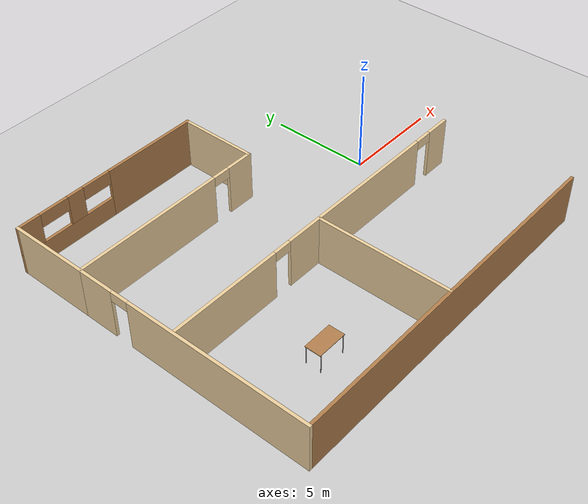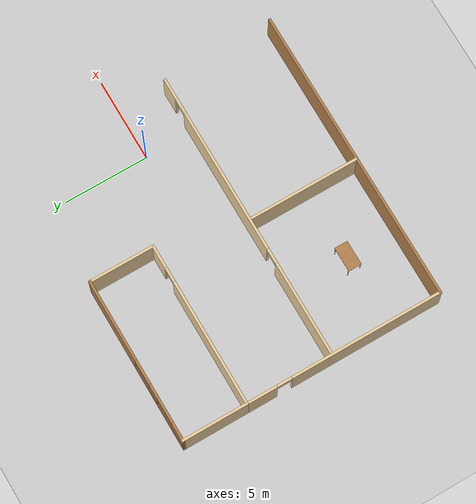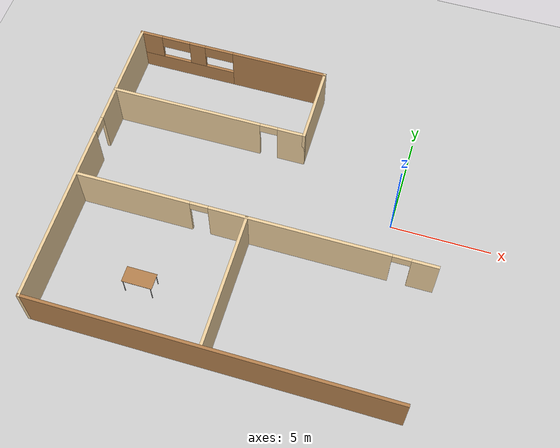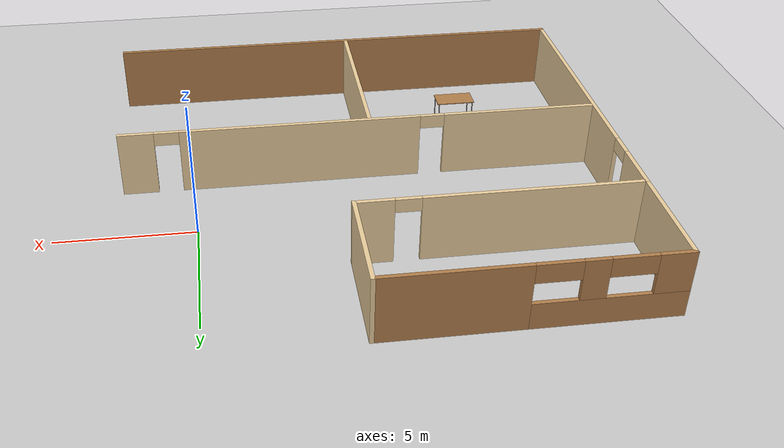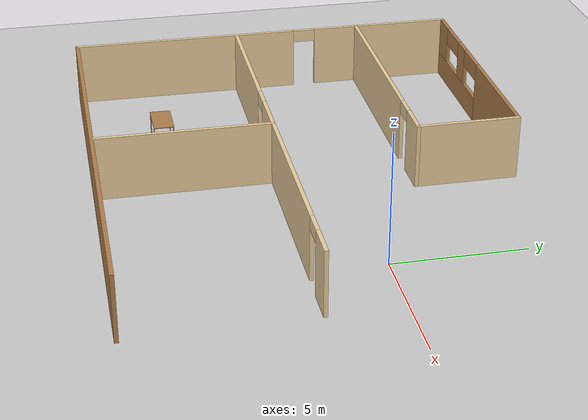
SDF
<sdf version="1.6">
 <world name="default">
  <model name="ground_plane">
   <static>1</static>
   <link name="link">
    <collision name="collision">
     <geometry><plane><normal>0 0 1</normal><size>100 100</size></plane></geometry>
     <surface><friction><ode><mu>100</mu><mu2>50</mu2></ode></friction></surface>
    </collision>
    <visual name="visual">
     <cast_shadows>0</cast_shadows>
     <geometry><plane><normal>0 0 1</normal><size>100 100</size></plane></geometry>
     <material>
      <script><uri>file://media/materials/scripts/gazebo.material</uri><name>Gazebo/Grey</name></script>
     </material>
    </visual>
   </link>
  </model>
  <model name="mymodel_2">
   <link name="Wall_125">
    <pose>1.575 7.85 0 0 -0 3.14159</pose>
    <visual name="Wall_125_Visual_0">
     <pose>-2.52053 0 1.25 0 -0 0</pose>
     <geometry><box><size>4.95895 0.15 2.5</size></box></geometry>
     <material>
      <script><uri>file://media/materials/scripts/gazebo.material</uri><name>Gazebo/Wood</name></script>
      <ambient>0.996078 0.47451 0.0196078 1</ambient>
      <shader type="pixel"/>
      <diffuse>1 1 1 1</diffuse>
      <specular>0.2 0.2 0.2 1</specular>
      <emissive>0 0 0 1</emissive>
     </material>
    </visual>
    <visual name="Wall_125_Visual_1">
     <pose>2.47947 0 0.5 0 -0 0</pose>
     <geometry><box><size>5.04105 0.15 1</size></box></geometry>
     <material>
      <script><uri>file://media/materials/scripts/gazebo.material</uri><name>Gazebo/Wood</name></script>
      <ambient>0.996078 0.47451 0.0196078 1</ambient>
      <shader type="pixel"/>
      <diffuse>1 1 1 1</diffuse>
      <specular>0.2 0.2 0.2 1</specular>
      <emissive>0 0 0 1</emissive>
     </material>
    </visual>
    <visual name="Wall_125_Visual_2">
     <pose>1.88216 0 1.75 0 -0 0</pose>
     <geometry><box><size>0.846424 0.15 1.5</size></box></geometry>
     <material>
      <script><uri>file://media/materials/scripts/gazebo.material</uri><name>Gazebo/Wood</name></script>
      <ambient>0.996078 0.47451 0.0196078 1</ambient>
      <shader type="pixel"/>
      <diffuse>1 1 1 1</diffuse>
      <specular>0.2 0.2 0.2 1</specular>
      <emissive>0 0 0 1</emissive>
     </material>
    </visual>
    <visual name="Wall_125_Visual_3">
     <pose>4.40268 0 1.75 0 -0 0</pose>
     <geometry><box><size>1.19463 0.15 1.5</size></box></geometry>
     <material>
      <script><uri>file://media/materials/scripts/gazebo.material</uri><name>Gazebo/Wood</name></script>
      <ambient>0.996078 0.47451 0.0196078 1</ambient>
      <shader type="pixel"/>
      <diffuse>1 1 1 1</diffuse>
      <specular>0.2 0.2 0.2 1</specular>
      <emissive>0 0 0 1</emissive>
     </material>
    </visual>
    <visual name="Wall_125_Visual_4">
     <pose>0.708946 0 2.15 0 -0 0</pose>
     <geometry><box><size>1.5 0.15 0.7</size></box></geometry>
     <material>
      <script><uri>file://media/materials/scripts/gazebo.material</uri><name>Gazebo/Wood</name></script>
      <ambient>0.996078 0.47451 0.0196078 1</ambient>
      <shader type="pixel"/>
      <diffuse>1 1 1 1</diffuse>
      <specular>0.2 0.2 0.2 1</specular>
      <emissive>0 0 0 1</emissive>
     </material>
    </visual>
    <visual name="Wall_125_Visual_5">
     <pose>3.05537 0 2.15 0 -0 0</pose>
     <geometry><box><size>1.5 0.15 0.7</size></box></geometry>
     <material>
      <script><uri>file://media/materials/scripts/gazebo.material</uri><name>Gazebo/Wood</name></script>
      <ambient>0.996078 0.47451 0.0196078 1</ambient>
      <shader type="pixel"/>
      <diffuse>1 1 1 1</diffuse>
      <specular>0.2 0.2 0.2 1</specular>
      <emissive>0 0 0 1</emissive>
     </material>
    </visual>
    <collision name="Wall_125_Collision_0">
     <pose>-2.52053 0 1.25 0 -0 0</pose>
     <geometry><box><size>4.95895 0.15 2.5</size></box></geometry>
     <surface>
      <friction>
       <ode><mu>1</mu><mu2>1</mu2><fdir1>0 0 0</fdir1><slip1>0</slip1><slip2>0</slip2></ode>
       <torsional>
        <coefficient>1</coefficient>
        <patch_radius>0</patch_radius>
        <surface_radius>0</surface_radius>
        <use_patch_radius>1</use_patch_radius>
        <ode><slip>0</slip></ode>
       </torsional>
      </friction>
      <bounce><restitution_coefficient>0</restitution_coefficient><threshold>1e+06</threshold></bounce>
      <contact>
       <collide_without_contact>0</collide_without_contact>
       <collide_without_contact_bitmask>1</collide_without_contact_bitmask>
       <collide_bitmask>1</collide_bitmask>
       <ode>
        <soft_cfm>0</soft_cfm>
        <soft_erp>0.2</soft_erp>
        <kp>1e+13</kp>
        <kd>1</kd>
        <max_vel>0.01</max_vel>
        <min_depth>0</min_depth>
       </ode>
       <bullet>
        <split_impulse>1</split_impulse>
        <split_impulse_penetration_threshold>-0.01</split_impulse_penetration_threshold>
        <soft_cfm>0</soft_cfm>
        <soft_erp>0.2</soft_erp>
        <kp>1e+13</kp>
        <kd>1</kd>
       </bullet>
      </contact>
     </surface>
    </collision>
    <collision name="Wall_125_Collision_1">
     <pose>2.47947 0 0.5 0 -0 0</pose>
     <geometry><box><size>5.04105 0.15 1</size></box></geometry>
     <surface>
      <friction>
       <ode><mu>1</mu><mu2>1</mu2><fdir1>0 0 0</fdir1><slip1>0</slip1><slip2>0</slip2></ode>
       <torsional>
        <coefficient>1</coefficient>
        <patch_radius>0</patch_radius>
        <surface_radius>0</surface_radius>
        <use_patch_radius>1</use_patch_radius>
        <ode><slip>0</slip></ode>
       </torsional>
      </friction>
      <bounce><restitution_coefficient>0</restitution_coefficient><threshold>1e+06</threshold></bounce>
      <contact>
       <collide_without_contact>0</collide_without_contact>
       <collide_without_contact_bitmask>1</collide_without_contact_bitmask>
       <collide_bitmask>1</collide_bitmask>
       <ode>
        <soft_cfm>0</soft_cfm>
        <soft_erp>0.2</soft_erp>
        <kp>1e+13</kp>
        <kd>1</kd>
        <max_vel>0.01</max_vel>
        <min_depth>0</min_depth>
       </ode>
       <bullet>
        <split_impulse>1</split_impulse>
        <split_impulse_penetration_threshold>-0.01</split_impulse_penetration_threshold>
        <soft_cfm>0</soft_cfm>
        <soft_erp>0.2</soft_erp>
        <kp>1e+13</kp>
        <kd>1</kd>
       </bullet>
      </contact>
     </surface>
    </collision>
    <collision name="Wall_125_Collision_3">
     <pose>4.40268 0 1.75 0 -0 0</pose>
     <geometry><box><size>1.19463 0.15 1.5</size></box></geometry>
     <surface>
      <friction>
       <ode><mu>1</mu><mu2>1</mu2><fdir1>0 0 0</fdir1><slip1>0</slip1><slip2>0</slip2></ode>
       <torsional>
        <coefficient>1</coefficient>
        <patch_radius>0</patch_radius>
        <surface_radius>0</surface_radius>
        <use_patch_radius>1</use_patch_radius>
        <ode><slip>0</slip></ode>
       </torsional>
      </friction>
      <bounce><restitution_coefficient>0</restitution_coefficient><threshold>1e+06</threshold></bounce>
      <contact>
       <collide_without_contact>0</collide_without_contact>
       <collide_without_contact_bitmask>1</collide_without_contact_bitmask>
       <collide_bitmask>1</collide_bitmask>
       <ode>
        <soft_cfm>0</soft_cfm>
        <soft_erp>0.2</soft_erp>
        <kp>1e+13</kp>
        <kd>1</kd>
        <max_vel>0.01</max_vel>
        <min_depth>0</min_depth>
       </ode>
       <bullet>
        <split_impulse>1</split_impulse>
        <split_impulse_penetration_threshold>-0.01</split_impulse_penetration_threshold>
        <soft_cfm>0</soft_cfm>
        <soft_erp>0.2</soft_erp>
        <kp>1e+13</kp>
        <kd>1</kd>
       </bullet>
      </contact>
     </surface>
    </collision>
    <collision name="Wall_125_Collision_2">
     <pose>1.88216 0 1.75 0 -0 0</pose>
     <geometry><box><size>0.846424 0.15 1.5</size></box></geometry>
     <surface>
      <friction>
       <ode><mu>1</mu><mu2>1</mu2><fdir1>0 0 0</fdir1><slip1>0</slip1><slip2>0</slip2></ode>
       <torsional>
        <coefficient>1</coefficient>
        <patch_radius>0</patch_radius>
        <surface_radius>0</surface_radius>
        <use_patch_radius>1</use_patch_radius>
        <ode><slip>0</slip></ode>
       </torsional>
      </friction>
      <bounce><restitution_coefficient>0</restitution_coefficient><threshold>1e+06</threshold></bounce>
      <contact>
       <collide_without_contact>0</collide_without_contact>
       <collide_without_contact_bitmask>1</collide_without_contact_bitmask>
       <collide_bitmask>1</collide_bitmask>
       <ode>
        <soft_cfm>0</soft_cfm>
        <soft_erp>0.2</soft_erp>
        <kp>1e+13</kp>
        <kd>1</kd>
        <max_vel>0.01</max_vel>
        <min_depth>0</min_depth>
       </ode>
       <bullet>
        <split_impulse>1</split_impulse>
        <split_impulse_penetration_threshold>-0.01</split_impulse_penetration_threshold>
        <soft_cfm>0</soft_cfm>
        <soft_erp>0.2</soft_erp>
        <kp>1e+13</kp>
        <kd>1</kd>
       </bullet>
      </contact>
     </surface>
    </collision>
    <collision name="Wall_125_Collision_4">
     <pose>0.708946 0 2.15 0 -0 0</pose>
     <geometry><box><size>1.5 0.15 0.7</size></box></geometry>
     <surface>
      <friction>
       <ode><mu>1</mu><mu2>1</mu2><fdir1>0 0 0</fdir1><slip1>0</slip1><slip2>0</slip2></ode>
       <torsional>
        <coefficient>1</coefficient>
        <patch_radius>0</patch_radius>
        <surface_radius>0</surface_radius>
        <use_patch_radius>1</use_patch_radius>
        <ode><slip>0</slip></ode>
       </torsional>
      </friction>
      <bounce><restitution_coefficient>0</restitution_coefficient><threshold>1e+06</threshold></bounce>
      <contact>
       <collide_without_contact>0</collide_without_contact>
       <collide_without_contact_bitmask>1</collide_without_contact_bitmask>
       <collide_bitmask>1</collide_bitmask>
       <ode>
        <soft_cfm>0</soft_cfm>
        <soft_erp>0.2</soft_erp>
        <kp>1e+13</kp>
        <kd>1</kd>
        <max_vel>0.01</max_vel>
        <min_depth>0</min_depth>
       </ode>
       <bullet>
        <split_impulse>1</split_impulse>
        <split_impulse_penetration_threshold>-0.01</split_impulse_penetration_threshold>
        <soft_cfm>0</soft_cfm>
        <soft_erp>0.2</soft_erp>
        <kp>1e+13</kp>
        <kd>1</kd>
       </bullet>
      </contact>
     </surface>
    </collision>
    <collision name="Wall_125_Collision_5">
     <pose>3.05537 0 2.15 0 -0 0</pose>
     <geometry><box><size>1.5 0.15 0.7</size></box></geometry>
     <surface>
      <friction>
       <ode><mu>1</mu><mu2>1</mu2><fdir1>0 0 0</fdir1><slip1>0</slip1><slip2>0</slip2></ode>
       <torsional>
        <coefficient>1</coefficient>
        <patch_radius>0</patch_radius>
        <surface_radius>0</surface_radius>
        <use_patch_radius>1</use_patch_radius>
        <ode><slip>0</slip></ode>
       </torsional>
      </friction>
      <bounce><restitution_coefficient>0</restitution_coefficient><threshold>1e+06</threshold></bounce>
      <contact>
       <collide_without_contact>0</collide_without_contact>
       <collide_without_contact_bitmask>1</collide_without_contact_bitmask>
       <collide_bitmask>1</collide_bitmask>
       <ode>
        <soft_cfm>0</soft_cfm>
        <soft_erp>0.2</soft_erp>
        <kp>1e+13</kp>
        <kd>1</kd>
        <max_vel>0.01</max_vel>
        <min_depth>0</min_depth>
       </ode>
       <bullet>
        <split_impulse>1</split_impulse>
        <split_impulse_penetration_threshold>-0.01</split_impulse_penetration_threshold>
        <soft_cfm>0</soft_cfm>
        <soft_erp>0.2</soft_erp>
        <kp>1e+13</kp>
        <kd>1</kd>
       </bullet>
      </contact>
     </surface>
    </collision>
   </link>
   <link name="Wall_127">
    <pose>-3.35 5.925 0 0 0 -1.5708</pose>
    <visual name="Wall_127_Visual">
     <pose>0 0 1.25 0 -0 0</pose>
     <geometry><box><size>4 0.15 2.5</size></box></geometry>
     <material>
      <script><uri>file://media/materials/scripts/gazebo.material</uri><name>Gazebo/Grey</name></script>
      <ambient>0.921569 0.807843 0.615686 1</ambient>
      <shader type="pixel"/>
      <diffuse>0.7 0.7 0.7 1</diffuse>
      <specular>0.01 0.01 0.01 1</specular>
      <emissive>0 0 0 1</emissive>
     </material>
    </visual>
    <collision name="Wall_127_Collision">
     <pose>0 0 1.25 0 -0 0</pose>
     <geometry><box><size>4 0.15 2.5</size></box></geometry>
     <surface>
      <friction>
       <ode><mu>1</mu><mu2>1</mu2><fdir1>0 0 0</fdir1><slip1>0</slip1><slip2>0</slip2></ode>
       <torsional>
        <coefficient>1</coefficient>
        <patch_radius>0</patch_radius>
        <surface_radius>0</surface_radius>
        <use_patch_radius>1</use_patch_radius>
        <ode><slip>0</slip></ode>
       </torsional>
      </friction>
      <bounce><restitution_coefficient>0</restitution_coefficient><threshold>1e+06</threshold></bounce>
      <contact>
       <collide_without_contact>0</collide_without_contact>
       <collide_without_contact_bitmask>1</collide_without_contact_bitmask>
       <collide_bitmask>1</collide_bitmask>
       <ode>
        <soft_cfm>0</soft_cfm>
        <soft_erp>0.2</soft_erp>
        <kp>1e+13</kp>
        <kd>1</kd>
        <max_vel>0.01</max_vel>
        <min_depth>0</min_depth>
       </ode>
       <bullet>
        <split_impulse>1</split_impulse>
        <split_impulse_penetration_threshold>-0.01</split_impulse_penetration_threshold>
        <soft_cfm>0</soft_cfm>
        <soft_erp>0.2</soft_erp>
        <kp>1e+13</kp>
        <kd>1</kd>
       </bullet>
      </contact>
     </surface>
    </collision>
   </link>
   <link name="Wall_129">
    <pose>1.575 4 0 0 -0 0</pose>
    <visual name="Wall_129_Visual_0">
     <pose>-1.15906 0 1.25 0 -0 0</pose>
     <geometry><box><size>7.68187 0.15 2.5</size></box></geometry>
     <material>
      <script><uri>file://media/materials/scripts/gazebo.material</uri><name>Gazebo/Grey</name></script>
      <ambient>0.921569 0.807843 0.615686 1</ambient>
      <shader type="pixel"/>
      <diffuse>0.7 0.7 0.7 1</diffuse>
      <specular>0.01 0.01 0.01 1</specular>
      <emissive>0 0 0 1</emissive>
     </material>
    </visual>
    <visual name="Wall_129_Visual_1">
     <pose>4.29094 0 1.25 0 -0 0</pose>
     <geometry><box><size>1.41813 0.15 2.5</size></box></geometry>
     <material>
      <script><uri>file://media/materials/scripts/gazebo.material</uri><name>Gazebo/Grey</name></script>
      <ambient>0.921569 0.807843 0.615686 1</ambient>
      <shader type="pixel"/>
      <diffuse>0.7 0.7 0.7 1</diffuse>
      <specular>0.01 0.01 0.01 1</specular>
      <emissive>0 0 0 1</emissive>
     </material>
    </visual>
    <visual name="Wall_129_Visual_2">
     <pose>3.13187 0 2.25 0 -0 0</pose>
     <geometry><box><size>0.9 0.15 0.5</size></box></geometry>
     <material>
      <script><uri>file://media/materials/scripts/gazebo.material</uri><name>Gazebo/Grey</name></script>
      <ambient>0.921569 0.807843 0.615686 1</ambient>
      <shader type="pixel"/>
      <diffuse>0.7 0.7 0.7 1</diffuse>
      <specular>0.01 0.01 0.01 1</specular>
      <emissive>0 0 0 1</emissive>
     </material>
    </visual>
    <collision name="Wall_129_Collision_0">
     <pose>-1.15906 0 1.25 0 -0 0</pose>
     <geometry><box><size>7.68187 0.15 2.5</size></box></geometry>
     <surface>
      <friction>
       <ode><mu>1</mu><mu2>1</mu2><fdir1>0 0 0</fdir1><slip1>0</slip1><slip2>0</slip2></ode>
       <torsional>
        <coefficient>1</coefficient>
        <patch_radius>0</patch_radius>
        <surface_radius>0</surface_radius>
        <use_patch_radius>1</use_patch_radius>
        <ode><slip>0</slip></ode>
       </torsional>
      </friction>
      <bounce><restitution_coefficient>0</restitution_coefficient><threshold>1e+06</threshold></bounce>
      <contact>
       <collide_without_contact>0</collide_without_contact>
       <collide_without_contact_bitmask>1</collide_without_contact_bitmask>
       <collide_bitmask>1</collide_bitmask>
       <ode>
        <soft_cfm>0</soft_cfm>
        <soft_erp>0.2</soft_erp>
        <kp>1e+13</kp>
        <kd>1</kd>
        <max_vel>0.01</max_vel>
        <min_depth>0</min_depth>
       </ode>
       <bullet>
        <split_impulse>1</split_impulse>
        <split_impulse_penetration_threshold>-0.01</split_impulse_penetration_threshold>
        <soft_cfm>0</soft_cfm>
        <soft_erp>0.2</soft_erp>
        <kp>1e+13</kp>
        <kd>1</kd>
       </bullet>
      </contact>
     </surface>
    </collision>
    <collision name="Wall_129_Collision_1">
     <pose>4.29094 0 1.25 0 -0 0</pose>
     <geometry><box><size>1.41813 0.15 2.5</size></box></geometry>
     <surface>
      <friction>
       <ode><mu>1</mu><mu2>1</mu2><fdir1>0 0 0</fdir1><slip1>0</slip1><slip2>0</slip2></ode>
       <torsional>
        <coefficient>1</coefficient>
        <patch_radius>0</patch_radius>
        <surface_radius>0</surface_radius>
        <use_patch_radius>1</use_patch_radius>
        <ode><slip>0</slip></ode>
       </torsional>
      </friction>
      <bounce><restitution_coefficient>0</restitution_coefficient><threshold>1e+06</threshold></bounce>
      <contact>
       <collide_without_contact>0</collide_without_contact>
       <collide_without_contact_bitmask>1</collide_without_contact_bitmask>
       <collide_bitmask>1</collide_bitmask>
       <ode>
        <soft_cfm>0</soft_cfm>
        <soft_erp>0.2</soft_erp>
        <kp>1e+13</kp>
        <kd>1</kd>
        <max_vel>0.01</max_vel>
        <min_depth>0</min_depth>
       </ode>
       <bullet>
        <split_impulse>1</split_impulse>
        <split_impulse_penetration_threshold>-0.01</split_impulse_penetration_threshold>
        <soft_cfm>0</soft_cfm>
        <soft_erp>0.2</soft_erp>
        <kp>1e+13</kp>
        <kd>1</kd>
       </bullet>
      </contact>
     </surface>
    </collision>
    <collision name="Wall_129_Collision_2">
     <pose>3.13187 0 2.25 0 -0 0</pose>
     <geometry><box><size>0.9 0.15 0.5</size></box></geometry>
     <surface>
      <friction>
       <ode><mu>1</mu><mu2>1</mu2><fdir1>0 0 0</fdir1><slip1>0</slip1><slip2>0</slip2></ode>
       <torsional>
        <coefficient>1</coefficient>
        <patch_radius>0</patch_radius>
        <surface_radius>0</surface_radius>
        <use_patch_radius>1</use_patch_radius>
        <ode><slip>0</slip></ode>
       </torsional>
      </friction>
      <bounce><restitution_coefficient>0</restitution_coefficient><threshold>1e+06</threshold></bounce>
      <contact>
       <collide_without_contact>0</collide_without_contact>
       <collide_without_contact_bitmask>1</collide_without_contact_bitmask>
       <collide_bitmask>1</collide_bitmask>
       <ode>
        <soft_cfm>0</soft_cfm>
        <soft_erp>0.2</soft_erp>
        <kp>1e+13</kp>
        <kd>1</kd>
        <max_vel>0.01</max_vel>
        <min_depth>0</min_depth>
       </ode>
       <bullet>
        <split_impulse>1</split_impulse>
        <split_impulse_penetration_threshold>-0.01</split_impulse_penetration_threshold>
        <soft_cfm>0</soft_cfm>
        <soft_erp>0.2</soft_erp>
        <kp>1e+13</kp>
        <kd>1</kd>
       </bullet>
      </contact>
     </surface>
    </collision>
   </link>
   <link name="Wall_148">
    <pose>-3.35 -1.925 0 0 0 -1.5708</pose>
    <visual name="Wall_148_Visual_0">
     <pose>-5.0473 0 1.25 0 -0 0</pose>
     <geometry><box><size>1.90541 0.15 2.5</size></box></geometry>
     <material>
      <script><uri>file://media/materials/scripts/gazebo.material</uri><name>Gazebo/Grey</name></script>
      <ambient>0.921569 0.807843 0.615686 1</ambient>
      <shader type="pixel"/>
      <diffuse>0.7 0.7 0.7 1</diffuse>
      <specular>0.01 0.01 0.01 1</specular>
      <emissive>0 0 0 1</emissive>
     </material>
    </visual>
    <visual name="Wall_148_Visual_1">
     <pose>1.4027 0 1.25 0 -0 0</pose>
     <geometry><box><size>9.19459 0.15 2.5</size></box></geometry>
     <material>
      <script><uri>file://media/materials/scripts/gazebo.material</uri><name>Gazebo/Grey</name></script>
      <ambient>0.921569 0.807843 0.615686 1</ambient>
      <shader type="pixel"/>
      <diffuse>0.7 0.7 0.7 1</diffuse>
      <specular>0.01 0.01 0.01 1</specular>
      <emissive>0 0 0 1</emissive>
     </material>
    </visual>
    <visual name="Wall_148_Visual_2">
     <pose>-3.64459 0 2.25 0 -0 0</pose>
     <geometry><box><size>0.9 0.15 0.5</size></box></geometry>
     <material>
      <script><uri>file://media/materials/scripts/gazebo.material</uri><name>Gazebo/Grey</name></script>
      <ambient>0.921569 0.807843 0.615686 1</ambient>
      <shader type="pixel"/>
      <diffuse>0.7 0.7 0.7 1</diffuse>
      <specular>0.01 0.01 0.01 1</specular>
      <emissive>0 0 0 1</emissive>
     </material>
    </visual>
    <collision name="Wall_148_Collision_0">
     <pose>-5.0473 0 1.25 0 -0 0</pose>
     <geometry><box><size>1.90541 0.15 2.5</size></box></geometry>
     <surface>
      <friction>
       <ode><mu>1</mu><mu2>1</mu2><fdir1>0 0 0</fdir1><slip1>0</slip1><slip2>0</slip2></ode>
       <torsional>
        <coefficient>1</coefficient>
        <patch_radius>0</patch_radius>
        <surface_radius>0</surface_radius>
        <use_patch_radius>1</use_patch_radius>
        <ode><slip>0</slip></ode>
       </torsional>
      </friction>
      <bounce><restitution_coefficient>0</restitution_coefficient><threshold>1e+06</threshold></bounce>
      <contact>
       <collide_without_contact>0</collide_without_contact>
       <collide_without_contact_bitmask>1</collide_without_contact_bitmask>
       <collide_bitmask>1</collide_bitmask>
       <ode>
        <soft_cfm>0</soft_cfm>
        <soft_erp>0.2</soft_erp>
        <kp>1e+13</kp>
        <kd>1</kd>
        <max_vel>0.01</max_vel>
        <min_depth>0</min_depth>
       </ode>
       <bullet>
        <split_impulse>1</split_impulse>
        <split_impulse_penetration_threshold>-0.01</split_impulse_penetration_threshold>
        <soft_cfm>0</soft_cfm>
        <soft_erp>0.2</soft_erp>
        <kp>1e+13</kp>
        <kd>1</kd>
       </bullet>
      </contact>
     </surface>
    </collision>
    <collision name="Wall_148_Collision_1">
     <pose>1.4027 0 1.25 0 -0 0</pose>
     <geometry><box><size>9.19459 0.15 2.5</size></box></geometry>
     <surface>
      <friction>
       <ode><mu>1</mu><mu2>1</mu2><fdir1>0 0 0</fdir1><slip1>0</slip1><slip2>0</slip2></ode>
       <torsional>
        <coefficient>1</coefficient>
        <patch_radius>0</patch_radius>
        <surface_radius>0</surface_radius>
        <use_patch_radius>1</use_patch_radius>
        <ode><slip>0</slip></ode>
       </torsional>
      </friction>
      <bounce><restitution_coefficient>0</restitution_coefficient><threshold>1e+06</threshold></bounce>
      <contact>
       <collide_without_contact>0</collide_without_contact>
       <collide_without_contact_bitmask>1</collide_without_contact_bitmask>
       <collide_bitmask>1</collide_bitmask>
       <ode>
        <soft_cfm>0</soft_cfm>
        <soft_erp>0.2</soft_erp>
        <kp>1e+13</kp>
        <kd>1</kd>
        <max_vel>0.01</max_vel>
        <min_depth>0</min_depth>
       </ode>
       <bullet>
        <split_impulse>1</split_impulse>
        <split_impulse_penetration_threshold>-0.01</split_impulse_penetration_threshold>
        <soft_cfm>0</soft_cfm>
        <soft_erp>0.2</soft_erp>
        <kp>1e+13</kp>
        <kd>1</kd>
       </bullet>
      </contact>
     </surface>
    </collision>
    <collision name="Wall_148_Collision_2">
     <pose>-3.64459 0 2.25 0 -0 0</pose>
     <geometry><box><size>0.9 0.15 0.5</size></box></geometry>
     <surface>
      <friction>
       <ode><mu>1</mu><mu2>1</mu2><fdir1>0 0 0</fdir1><slip1>0</slip1><slip2>0</slip2></ode>
       <torsional>
        <coefficient>1</coefficient>
        <patch_radius>0</patch_radius>
        <surface_radius>0</surface_radius>
        <use_patch_radius>1</use_patch_radius>
        <ode><slip>0</slip></ode>
       </torsional>
      </friction>
      <bounce><restitution_coefficient>0</restitution_coefficient><threshold>1e+06</threshold></bounce>
      <contact>
       <collide_without_contact>0</collide_without_contact>
       <collide_without_contact_bitmask>1</collide_without_contact_bitmask>
       <collide_bitmask>1</collide_bitmask>
       <ode>
        <soft_cfm>0</soft_cfm>
        <soft_erp>0.2</soft_erp>
        <kp>1e+13</kp>
        <kd>1</kd>
        <max_vel>0.01</max_vel>
        <min_depth>0</min_depth>
       </ode>
       <bullet>
        <split_impulse>1</split_impulse>
        <split_impulse_penetration_threshold>-0.01</split_impulse_penetration_threshold>
        <soft_cfm>0</soft_cfm>
        <soft_erp>0.2</soft_erp>
        <kp>1e+13</kp>
        <kd>1</kd>
       </bullet>
      </contact>
     </surface>
    </collision>
   </link>
   <link name="Wall_160">
    <pose>5.52431 -1.18597 0 0 0 -3e-06</pose>
    <visual name="Wall_160_Visual_0">
     <pose>-5.96657 0 1.25 0 -0 0</pose>
     <geometry><box><size>5.67479 0.15 2.5</size></box></geometry>
     <material>
      <script><uri>file://media/materials/scripts/gazebo.material</uri><name>Gazebo/Grey</name></script>
      <ambient>0.921569 0.807843 0.615686 1</ambient>
      <shader type="pixel"/>
      <diffuse>0.7 0.7 0.7 1</diffuse>
      <specular>0.01 0.01 0.01 1</specular>
      <emissive>0 0 0 1</emissive>
     </material>
    </visual>
    <visual name="Wall_160_Visual_1">
     <pose>2.18678 0 1.25 0 -0 0</pose>
     <geometry><box><size>8.83193 0.15 2.5</size></box></geometry>
     <material>
      <script><uri>file://media/materials/scripts/gazebo.material</uri><name>Gazebo/Grey</name></script>
      <ambient>0.921569 0.807843 0.615686 1</ambient>
      <shader type="pixel"/>
      <diffuse>0.7 0.7 0.7 1</diffuse>
      <specular>0.01 0.01 0.01 1</specular>
      <emissive>0 0 0 1</emissive>
     </material>
    </visual>
    <visual name="Wall_160_Visual_2">
     <pose>8.15336 0 1.25 0 -0 0</pose>
     <geometry><box><size>1.30122 0.15 2.5</size></box></geometry>
     <material>
      <script><uri>file://media/materials/scripts/gazebo.material</uri><name>Gazebo/Grey</name></script>
      <ambient>0.921569 0.807843 0.615686 1</ambient>
      <shader type="pixel"/>
      <diffuse>0.7 0.7 0.7 1</diffuse>
      <specular>0.01 0.01 0.01 1</specular>
      <emissive>0 0 0 1</emissive>
     </material>
    </visual>
    <visual name="Wall_160_Visual_3">
     <pose>-2.67918 0 2.25 0 -0 0</pose>
     <geometry><box><size>0.9 0.15 0.5</size></box></geometry>
     <material>
      <script><uri>file://media/materials/scripts/gazebo.material</uri><name>Gazebo/Grey</name></script>
      <ambient>0.921569 0.807843 0.615686 1</ambient>
      <shader type="pixel"/>
      <diffuse>0.7 0.7 0.7 1</diffuse>
      <specular>0.01 0.01 0.01 1</specular>
      <emissive>0 0 0 1</emissive>
     </material>
    </visual>
    <visual name="Wall_160_Visual_4">
     <pose>7.05275 0 2.25 0 -0 0</pose>
     <geometry><box><size>0.9 0.15 0.5</size></box></geometry>
     <material>
      <script><uri>file://media/materials/scripts/gazebo.material</uri><name>Gazebo/Grey</name></script>
      <ambient>0.921569 0.807843 0.615686 1</ambient>
      <shader type="pixel"/>
      <diffuse>0.7 0.7 0.7 1</diffuse>
      <specular>0.01 0.01 0.01 1</specular>
      <emissive>0 0 0 1</emissive>
     </material>
    </visual>
    <collision name="Wall_160_Collision_1">
     <pose>2.18678 0 1.25 0 -0 0</pose>
     <geometry><box><size>8.83193 0.15 2.5</size></box></geometry>
     <surface>
      <friction>
       <ode><mu>1</mu><mu2>1</mu2><fdir1>0 0 0</fdir1><slip1>0</slip1><slip2>0</slip2></ode>
       <torsional>
        <coefficient>1</coefficient>
        <patch_radius>0</patch_radius>
        <surface_radius>0</surface_radius>
        <use_patch_radius>1</use_patch_radius>
        <ode><slip>0</slip></ode>
       </torsional>
      </friction>
      <bounce><restitution_coefficient>0</restitution_coefficient><threshold>1e+06</threshold></bounce>
      <contact>
       <collide_without_contact>0</collide_without_contact>
       <collide_without_contact_bitmask>1</collide_without_contact_bitmask>
       <collide_bitmask>1</collide_bitmask>
       <ode>
        <soft_cfm>0</soft_cfm>
        <soft_erp>0.2</soft_erp>
        <kp>1e+13</kp>
        <kd>1</kd>
        <max_vel>0.01</max_vel>
        <min_depth>0</min_depth>
       </ode>
       <bullet>
        <split_impulse>1</split_impulse>
        <split_impulse_penetration_threshold>-0.01</split_impulse_penetration_threshold>
        <soft_cfm>0</soft_cfm>
        <soft_erp>0.2</soft_erp>
        <kp>1e+13</kp>
        <kd>1</kd>
       </bullet>
      </contact>
     </surface>
    </collision>
    <collision name="Wall_160_Collision_2">
     <pose>8.15336 0 1.25 0 -0 0</pose>
     <geometry><box><size>1.30122 0.15 2.5</size></box></geometry>
     <surface>
      <friction>
       <ode><mu>1</mu><mu2>1</mu2><fdir1>0 0 0</fdir1><slip1>0</slip1><slip2>0</slip2></ode>
       <torsional>
        <coefficient>1</coefficient>
        <patch_radius>0</patch_radius>
        <surface_radius>0</surface_radius>
        <use_patch_radius>1</use_patch_radius>
        <ode><slip>0</slip></ode>
       </torsional>
      </friction>
      <bounce><restitution_coefficient>0</restitution_coefficient><threshold>1e+06</threshold></bounce>
      <contact>
       <collide_without_contact>0</collide_without_contact>
       <collide_without_contact_bitmask>1</collide_without_contact_bitmask>
       <collide_bitmask>1</collide_bitmask>
       <ode>
        <soft_cfm>0</soft_cfm>
        <soft_erp>0.2</soft_erp>
        <kp>1e+13</kp>
        <kd>1</kd>
        <max_vel>0.01</max_vel>
        <min_depth>0</min_depth>
       </ode>
       <bullet>
        <split_impulse>1</split_impulse>
        <split_impulse_penetration_threshold>-0.01</split_impulse_penetration_threshold>
        <soft_cfm>0</soft_cfm>
        <soft_erp>0.2</soft_erp>
        <kp>1e+13</kp>
        <kd>1</kd>
       </bullet>
      </contact>
     </surface>
    </collision>
    <collision name="Wall_160_Collision_0">
     <pose>-5.96657 0 1.25 0 -0 0</pose>
     <geometry><box><size>5.67479 0.15 2.5</size></box></geometry>
     <surface>
      <friction>
       <ode><mu>1</mu><mu2>1</mu2><fdir1>0 0 0</fdir1><slip1>0</slip1><slip2>0</slip2></ode>
       <torsional>
        <coefficient>1</coefficient>
        <patch_radius>0</patch_radius>
        <surface_radius>0</surface_radius>
        <use_patch_radius>1</use_patch_radius>
        <ode><slip>0</slip></ode>
       </torsional>
      </friction>
      <bounce><restitution_coefficient>0</restitution_coefficient><threshold>1e+06</threshold></bounce>
      <contact>
       <collide_without_contact>0</collide_without_contact>
       <collide_without_contact_bitmask>1</collide_without_contact_bitmask>
       <collide_bitmask>1</collide_bitmask>
       <ode>
        <soft_cfm>0</soft_cfm>
        <soft_erp>0.2</soft_erp>
        <kp>1e+13</kp>
        <kd>1</kd>
        <max_vel>0.01</max_vel>
        <min_depth>0</min_depth>
       </ode>
       <bullet>
        <split_impulse>1</split_impulse>
        <split_impulse_penetration_threshold>-0.01</split_impulse_penetration_threshold>
        <soft_cfm>0</soft_cfm>
        <soft_erp>0.2</soft_erp>
        <kp>1e+13</kp>
        <kd>1</kd>
       </bullet>
      </contact>
     </surface>
    </collision>
    <collision name="Wall_160_Collision_3">
     <pose>-2.67918 0 2.25 0 -0 0</pose>
     <geometry><box><size>0.9 0.15 0.5</size></box></geometry>
     <surface>
      <friction>
       <ode><mu>1</mu><mu2>1</mu2><fdir1>0 0 0</fdir1><slip1>0</slip1><slip2>0</slip2></ode>
       <torsional>
        <coefficient>1</coefficient>
        <patch_radius>0</patch_radius>
        <surface_radius>0</surface_radius>
        <use_patch_radius>1</use_patch_radius>
        <ode><slip>0</slip></ode>
       </torsional>
      </friction>
      <bounce><restitution_coefficient>0</restitution_coefficient><threshold>1e+06</threshold></bounce>
      <contact>
       <collide_without_contact>0</collide_without_contact>
       <collide_without_contact_bitmask>1</collide_without_contact_bitmask>
       <collide_bitmask>1</collide_bitmask>
       <ode>
        <soft_cfm>0</soft_cfm>
        <soft_erp>0.2</soft_erp>
        <kp>1e+13</kp>
        <kd>1</kd>
        <max_vel>0.01</max_vel>
        <min_depth>0</min_depth>
       </ode>
       <bullet>
        <split_impulse>1</split_impulse>
        <split_impulse_penetration_threshold>-0.01</split_impulse_penetration_threshold>
        <soft_cfm>0</soft_cfm>
        <soft_erp>0.2</soft_erp>
        <kp>1e+13</kp>
        <kd>1</kd>
       </bullet>
      </contact>
     </surface>
    </collision>
    <collision name="Wall_160_Collision_4">
     <pose>7.05275 0 2.25 0 -0 0</pose>
     <geometry><box><size>0.9 0.15 0.5</size></box></geometry>
     <surface>
      <friction>
       <ode><mu>1</mu><mu2>1</mu2><fdir1>0 0 0</fdir1><slip1>0</slip1><slip2>0</slip2></ode>
       <torsional>
        <coefficient>1</coefficient>
        <patch_radius>0</patch_radius>
        <surface_radius>0</surface_radius>
        <use_patch_radius>1</use_patch_radius>
        <ode><slip>0</slip></ode>
       </torsional>
      </friction>
      <bounce><restitution_coefficient>0</restitution_coefficient><threshold>1e+06</threshold></bounce>
      <contact>
       <collide_without_contact>0</collide_without_contact>
       <collide_without_contact_bitmask>1</collide_without_contact_bitmask>
       <collide_bitmask>1</collide_bitmask>
       <ode>
        <soft_cfm>0</soft_cfm>
        <soft_erp>0.2</soft_erp>
        <kp>1e+13</kp>
        <kd>1</kd>
        <max_vel>0.01</max_vel>
        <min_depth>0</min_depth>
       </ode>
       <bullet>
        <split_impulse>1</split_impulse>
        <split_impulse_penetration_threshold>-0.01</split_impulse_penetration_threshold>
        <soft_cfm>0</soft_cfm>
        <soft_erp>0.2</soft_erp>
        <kp>1e+13</kp>
        <kd>1</kd>
       </bullet>
      </contact>
     </surface>
    </collision>
   </link>
   <link name="Wall_174">
    <pose>5.5 -7.85 0 0 -0 3.14159</pose>
    <visual name="Wall_174_Visual">
     <pose>0 0 1.25 0 -0 0</pose>
     <geometry><box><size>17.85 0.15 2.5</size></box></geometry>
     <material>
      <script><uri>file://media/materials/scripts/gazebo.material</uri><name>Gazebo/Wood</name></script>
      <ambient>0.996078 0.47451 0.0196078 1</ambient>
      <shader type="pixel"/>
      <diffuse>1 1 1 1</diffuse>
      <specular>0.2 0.2 0.2 1</specular>
      <emissive>0 0 0 1</emissive>
     </material>
    </visual>
    <collision name="Wall_174_Collision">
     <pose>0 0 1.25 0 -0 0</pose>
     <geometry><box><size>17.85 0.15 2.5</size></box></geometry>
     <surface>
      <friction>
       <ode><mu>1</mu><mu2>1</mu2><fdir1>0 0 0</fdir1><slip1>0</slip1><slip2>0</slip2></ode>
       <torsional>
        <coefficient>1</coefficient>
        <patch_radius>0</patch_radius>
        <surface_radius>0</surface_radius>
        <use_patch_radius>1</use_patch_radius>
        <ode><slip>0</slip></ode>
       </torsional>
      </friction>
      <bounce><restitution_coefficient>0</restitution_coefficient><threshold>1e+06</threshold></bounce>
      <contact>
       <collide_without_contact>0</collide_without_contact>
       <collide_without_contact_bitmask>1</collide_without_contact_bitmask>
       <collide_bitmask>1</collide_bitmask>
       <ode>
        <soft_cfm>0</soft_cfm>
        <soft_erp>0.2</soft_erp>
        <kp>1e+13</kp>
        <kd>1</kd>
        <max_vel>0.01</max_vel>
        <min_depth>0</min_depth>
       </ode>
       <bullet>
        <split_impulse>1</split_impulse>
        <split_impulse_penetration_threshold>-0.01</split_impulse_penetration_threshold>
        <soft_cfm>0</soft_cfm>
        <soft_erp>0.2</soft_erp>
        <kp>1e+13</kp>
        <kd>1</kd>
       </bullet>
      </contact>
     </surface>
    </collision>
   </link>
   <link name="Wall_177">
    <pose>5.18454 -4.51051 0 0 0 -1.5708</pose>
    <visual name="Wall_177_Visual">
     <pose>0 0 1.25 0 -0 0</pose>
     <geometry><box><size>6.75 0.15 2.5</size></box></geometry>
     <material>
      <script><uri>file://media/materials/scripts/gazebo.material</uri><name>Gazebo/Grey</name></script>
      <ambient>0.921569 0.807843 0.615686 1</ambient>
      <shader type="pixel"/>
      <diffuse>0.7 0.7 0.7 1</diffuse>
      <specular>0.01 0.01 0.01 1</specular>
      <emissive>0 0 0 1</emissive>
     </material>
    </visual>
    <collision name="Wall_177_Collision">
     <pose>0 0 1.25 0 -0 0</pose>
     <geometry><box><size>6.75 0.15 2.5</size></box></geometry>
     <surface>
      <friction>
       <ode><mu>1</mu><mu2>1</mu2><fdir1>0 0 0</fdir1><slip1>0</slip1><slip2>0</slip2></ode>
       <torsional>
        <coefficient>1</coefficient>
        <patch_radius>0</patch_radius>
        <surface_radius>0</surface_radius>
        <use_patch_radius>1</use_patch_radius>
        <ode><slip>0</slip></ode>
       </torsional>
      </friction>
      <bounce><restitution_coefficient>0</restitution_coefficient><threshold>1e+06</threshold></bounce>
      <contact>
       <collide_without_contact>0</collide_without_contact>
       <collide_without_contact_bitmask>1</collide_without_contact_bitmask>
       <collide_bitmask>1</collide_bitmask>
       <ode>
        <soft_cfm>0</soft_cfm>
        <soft_erp>0.2</soft_erp>
        <kp>1e+13</kp>
        <kd>1</kd>
        <max_vel>0.01</max_vel>
        <min_depth>0</min_depth>
       </ode>
       <bullet>
        <split_impulse>1</split_impulse>
        <split_impulse_penetration_threshold>-0.01</split_impulse_penetration_threshold>
        <soft_cfm>0</soft_cfm>
        <soft_erp>0.2</soft_erp>
        <kp>1e+13</kp>
        <kd>1</kd>
       </bullet>
      </contact>
     </surface>
    </collision>
   </link>
   <link name="Wall_45">
    <pose>6.5 5.925 0 0 0 -1.5708</pose>
    <visual name="Wall_45_Visual">
     <pose>0 0 1.25 0 -0 0</pose>
     <geometry><box><size>4 0.15 2.5</size></box></geometry>
     <material>
      <script><uri>file://media/materials/scripts/gazebo.material</uri><name>Gazebo/Grey</name></script>
      <ambient>0.921569 0.807843 0.615686 1</ambient>
      <shader type="pixel"/>
      <diffuse>0.7 0.7 0.7 1</diffuse>
      <specular>0.01 0.01 0.01 1</specular>
      <emissive>0 0 0 1</emissive>
     </material>
    </visual>
    <collision name="Wall_45_Collision">
     <pose>0 0 1.25 0 -0 0</pose>
     <geometry><box><size>4 0.15 2.5</size></box></geometry>
     <surface>
      <friction>
       <ode><mu>1</mu><mu2>1</mu2><fdir1>0 0 0</fdir1><slip1>0</slip1><slip2>0</slip2></ode>
       <torsional>
        <coefficient>1</coefficient>
        <patch_radius>0</patch_radius>
        <surface_radius>0</surface_radius>
        <use_patch_radius>1</use_patch_radius>
        <ode><slip>0</slip></ode>
       </torsional>
      </friction>
      <bounce><restitution_coefficient>0</restitution_coefficient><threshold>1e+06</threshold></bounce>
      <contact>
       <collide_without_contact>0</collide_without_contact>
       <collide_without_contact_bitmask>1</collide_without_contact_bitmask>
       <collide_bitmask>1</collide_bitmask>
       <ode>
        <soft_cfm>0</soft_cfm>
        <soft_erp>0.2</soft_erp>
        <kp>1e+13</kp>
        <kd>1</kd>
        <max_vel>0.01</max_vel>
        <min_depth>0</min_depth>
       </ode>
       <bullet>
        <split_impulse>1</split_impulse>
        <split_impulse_penetration_threshold>-0.01</split_impulse_penetration_threshold>
        <soft_cfm>0</soft_cfm>
        <soft_erp>0.2</soft_erp>
        <kp>1e+13</kp>
        <kd>1</kd>
       </bullet>
      </contact>
     </surface>
    </collision>
   </link>
   <static>1</static>
   <pose>-11.6418 -1.59752 0 0 -0 0</pose>
  </model>
  <model name="table">
   <static>1</static>
   <link name="link">
    <collision name="surface">
     <pose>0 0 1 0 -0 0</pose>
     <geometry><box><size>1.5 0.8 0.03</size></box></geometry>
     <surface><friction><ode><mu>0.6</mu><mu2>0.6</mu2></ode></friction></surface>
    </collision>
    <visual name="visual1">
     <pose>0 0 1 0 -0 0</pose>
     <geometry><box><size>1.5 0.8 0.03</size></box></geometry>
     <material>
      <script><uri>file://media/materials/scripts/gazebo.material</uri><name>Gazebo/Wood</name></script>
     </material>
    </visual>
    <collision name="front_left_leg">
     <pose>0.68 0.38 0.5 0 -0 0</pose>
     <geometry><cylinder><radius>0.02</radius><length>1</length></cylinder></geometry>
    </collision>
    <visual name="front_left_leg">
     <pose>0.68 0.38 0.5 0 -0 0</pose>
     <geometry><cylinder><radius>0.02</radius><length>1</length></cylinder></geometry>
     <material>
      <script><uri>file://media/materials/scripts/gazebo.material</uri><name>Gazebo/Grey</name></script>
     </material>
    </visual>
    <collision name="front_right_leg">
     <pose>0.68 -0.38 0.5 0 -0 0</pose>
     <geometry><cylinder><radius>0.02</radius><length>1</length></cylinder></geometry>
    </collision>
    <visual name="front_right_leg">
     <pose>0.68 -0.38 0.5 0 -0 0</pose>
     <geometry><cylinder><radius>0.02</radius><length>1</length></cylinder></geometry>
     <material>
      <script><uri>file://media/materials/scripts/gazebo.material</uri><name>Gazebo/Grey</name></script>
     </material>
    </visual>
    <collision name="back_right_leg">
     <pose>-0.68 -0.38 0.5 0 -0 0</pose>
     <geometry><cylinder><radius>0.02</radius><length>1</length></cylinder></geometry>
    </collision>
    <visual name="back_right_leg">
     <pose>-0.68 -0.38 0.5 0 -0 0</pose>
     <geometry><cylinder><radius>0.02</radius><length>1</length></cylinder></geometry>
     <material>
      <script><uri>file://media/materials/scripts/gazebo.material</uri><name>Gazebo/Grey</name></script>
     </material>
    </visual>
    <collision name="back_left_leg">
     <pose>-0.68 0.38 0.5 0 -0 0</pose>
     <geometry><cylinder><radius>0.02</radius><length>1</length></cylinder></geometry>
    </collision>
    <visual name="back_left_leg">
     <pose>-0.68 0.38 0.5 0 -0 0</pose>
     <geometry><cylinder><radius>0.02</radius><length>1</length></cylinder></geometry>
     <material>
      <script><uri>file://media/materials/scripts/gazebo.material</uri><name>Gazebo/Grey</name></script>
     </material>
    </visual>
   </link>
   <pose>-10.559 -6.50163 0 0 -0 0</pose>
  </model>
 </world>
</sdf>
